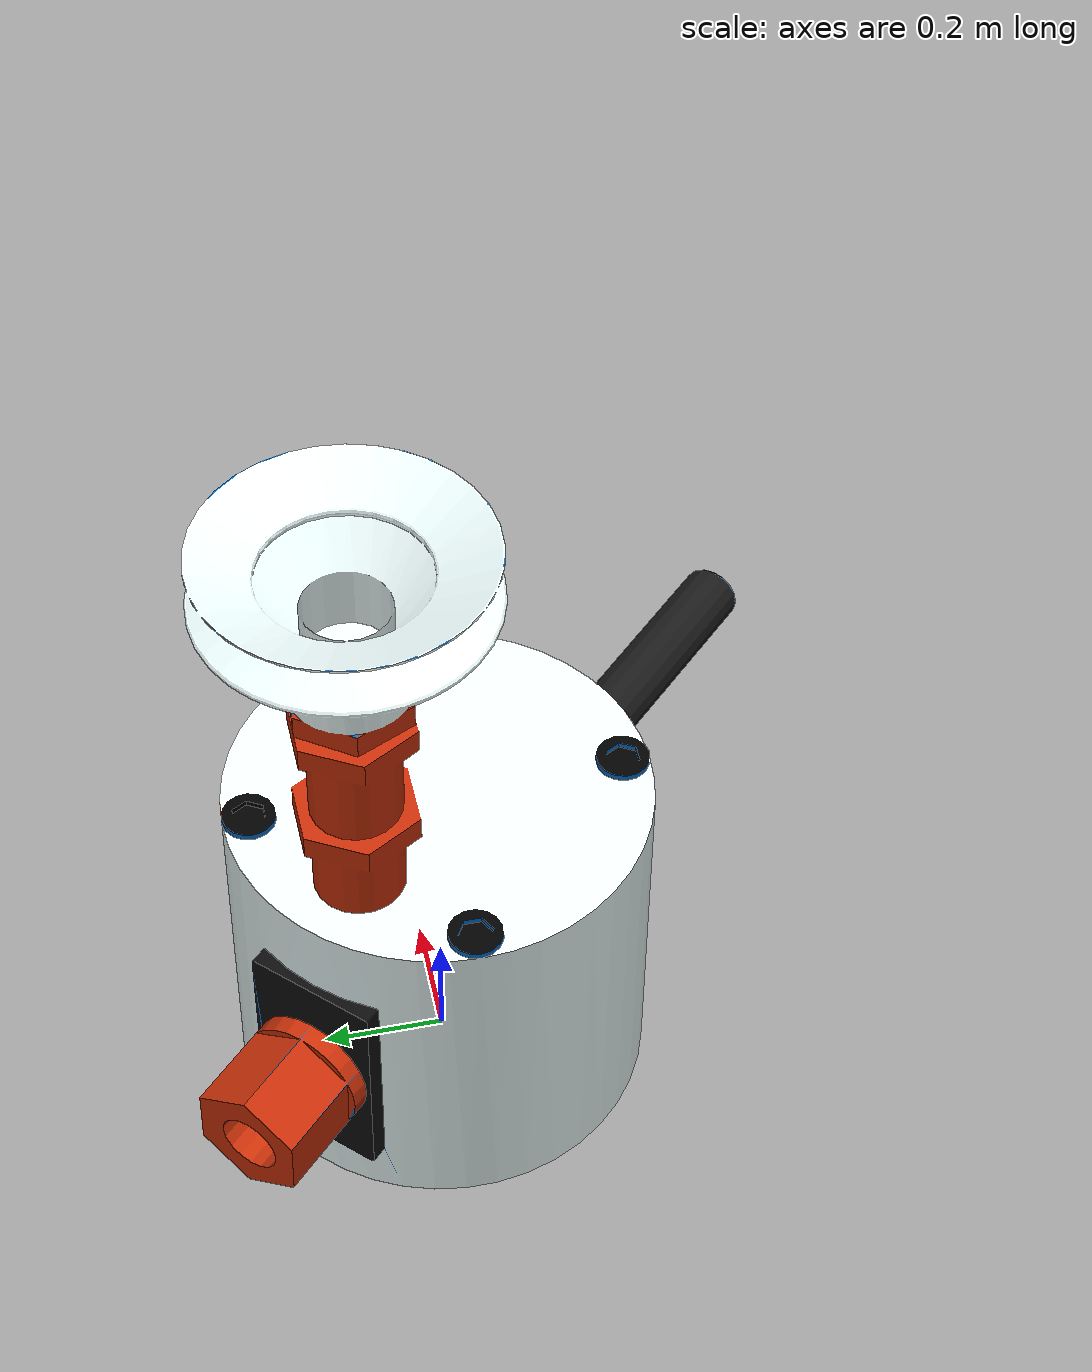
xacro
<?xml version="1.0" encoding="utf-8"?>
<robot xmlns:xacro="http://www.ros.org/wiki/xacro" name="vacuum_gripper">

<!-- If visualizing just the gripper with no arm, set the true, otherwise, set to false -->
  <xacro:property name="gripper_only" default="true"/>

  <xacro:if value="${gripper_only}">
    <link name="world" />
  </xacro:if>

  <!-- Here we define the 2 parameters of the macro -->
  <xacro:macro name="vacuum_gripper" params="
    prefix
    connected_to:=base_link">

    <!-- Create a fixed joint with a parameterized name. -->
    <joint name="${prefix}measurement_tool_joint" type="fixed">
      <!-- The parent link must be read from the robot model it is attached to. -->
      <parent link="${connected_to}"/>
      <child link="${prefix}ee_link"/>
      <!-- The tool is directly attached to the flange. -->
      <origin rpy="0 0 0" xyz="0 0 0"/>
    </joint>

    <link name="${prefix}ee_link">
      <visual>
        <geometry>
          <!-- The path to the visual meshes in the package. -->
          <mesh filename="package://ur3_vacuum_gripper_description/meshes/vacuum_gripper.dae"/>
        </geometry>
      </visual>
      <collision>
        <geometry>
          <!-- The path to the collision meshes in the package. -->
          <cylinder length="0.06" radius="0.03"/>
        </geometry>
      </collision>
    </link>

    <!-- TCP frame -->
    <joint name="${prefix}tcp_joint" type="fixed">
      <origin xyz="0 0 0.116" rpy="0 0 0"/>
      <parent link="${prefix}ee_link"/>
      <child link="${prefix}tcp"/>
    </joint>
    <link name="${prefix}tcp"/>

  </xacro:macro>

  <xacro:if value="${gripper_only}">
    <xacro:vacuum_gripper prefix="" connected_to="world"/>
  </xacro:if>

</robot>
